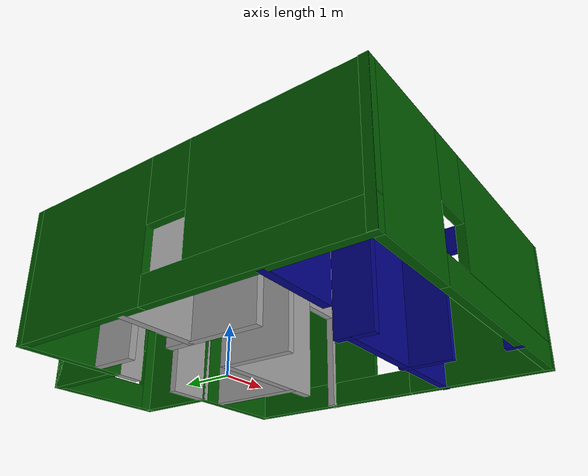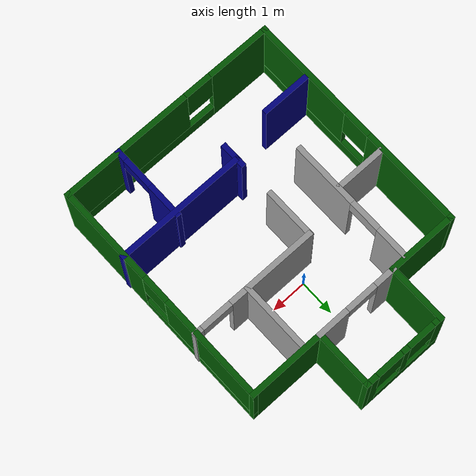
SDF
<?xml version='1.0'?>
<sdf version='1.6'>
  <model name='house'>
    <pose frame=''>-0.016749 -0.865933 0 0 -0 0</pose>
    <link name='Wall_10'>
      <collision name='Wall_10_Collision'>
        <geometry>
          <box>
            <size>2.25 0.15 2.5</size>
          </box>
        </geometry>
        <pose frame=''>0 0 1.25 0 -0 0</pose>
      </collision>
      <visual name='Wall_10_Visual'>
        <pose frame=''>0 0 1.25 0 -0 0</pose>
        <geometry>
          <box>
            <size>2.25 0.15 2.5</size>
          </box>
        </geometry>
        <material>
          <script>
            <uri>file://media/materials/scripts/gazebo.material</uri>
            <name>Gazebo/Grey</name>
          </script>
          <ambient>0 0.333333 0 1</ambient>
        </material>
        <meta>
          <layer>0</layer>
        </meta>
      </visual>
      <pose frame=''>2.11595 2.48106 0 0 -0 3.14159</pose>
    </link>
    <link name='Wall_11'>
      <collision name='Wall_11_Collision'>
        <geometry>
          <box>
            <size>1.75 0.15 2.5</size>
          </box>
        </geometry>
        <pose frame=''>0 0 1.25 0 -0 0</pose>
      </collision>
      <visual name='Wall_11_Visual'>
        <pose frame=''>0 0 1.25 0 -0 0</pose>
        <geometry>
          <box>
            <size>1.75 0.15 2.5</size>
          </box>
        </geometry>
        <material>
          <script>
            <uri>file://media/materials/scripts/gazebo.material</uri>
            <name>Gazebo/Grey</name>
          </script>
          <ambient>0 0.333333 0 1</ambient>
        </material>
        <meta>
          <layer>0</layer>
        </meta>
      </visual>
      <pose frame=''>1.06595 3.28106 0 0 -0 1.5708</pose>
    </link>
    <link name='Wall_12'>
      <pose frame=''>-0.10905 4.08106 0 0 -0 3.14159</pose>
      <visual name='Wall_12_Visual_0'>
        <pose frame=''>-1.05634 0 1.25 0 -0 0</pose>
        <geometry>
          <box>
            <size>0.387325 0.15 2.5</size>
          </box>
        </geometry>
        <material>
          <script>
            <uri>file://media/materials/scripts/gazebo.material</uri>
            <name>Gazebo/Grey</name>
          </script>
          <ambient>0 0.333333 0 1</ambient>
        </material>
        <meta>
          <layer>0</layer>
        </meta>
      </visual>
      <collision name='Wall_12_Collision_0'>
        <geometry>
          <box>
            <size>0.387325 0.15 2.5</size>
          </box>
        </geometry>
        <pose frame=''>-1.05634 0 1.25 0 -0 0</pose>
      </collision>
      <visual name='Wall_12_Visual_1'>
        <pose frame=''>0.193662 0 0.25 0 -0 0</pose>
        <geometry>
          <box>
            <size>2.11267 0.15 0.5</size>
          </box>
        </geometry>
        <material>
          <script>
            <uri>file://media/materials/scripts/gazebo.material</uri>
            <name>Gazebo/Grey</name>
          </script>
          <ambient>0 0.333333 0 1</ambient>
        </material>
        <meta>
          <layer>0</layer>
        </meta>
      </visual>
      <collision name='Wall_12_Collision_1'>
        <geometry>
          <box>
            <size>2.11267 0.15 0.5</size>
          </box>
        </geometry>
        <pose frame=''>0.193662 0 0.25 0 -0 0</pose>
      </collision>
      <visual name='Wall_12_Visual_2'>
        <pose frame=''>0.041554 0 1.5 0 -0 0</pose>
        <geometry>
          <box>
            <size>0.208458 0.15 2</size>
          </box>
        </geometry>
        <material>
          <script>
            <uri>file://media/materials/scripts/gazebo.material</uri>
            <name>Gazebo/Grey</name>
          </script>
          <ambient>0 0.333333 0 1</ambient>
        </material>
        <meta>
          <layer>0</layer>
        </meta>
      </visual>
      <collision name='Wall_12_Collision_2'>
        <geometry>
          <box>
            <size>0.208458 0.15 2</size>
          </box>
        </geometry>
        <pose frame=''>0.041554 0 1.5 0 -0 0</pose>
      </collision>
      <visual name='Wall_12_Visual_3'>
        <pose frame=''>1.09789 0 1.5 0 -0 0</pose>
        <geometry>
          <box>
            <size>0.304217 0.15 2</size>
          </box>
        </geometry>
        <material>
          <script>
            <uri>file://media/materials/scripts/gazebo.material</uri>
            <name>Gazebo/Grey</name>
          </script>
          <ambient>0 0.333333 0 1</ambient>
        </material>
        <meta>
          <layer>0</layer>
        </meta>
      </visual>
      <collision name='Wall_12_Collision_3'>
        <geometry>
          <box>
            <size>0.304217 0.15 2</size>
          </box>
        </geometry>
        <pose frame=''>1.09789 0 1.5 0 -0 0</pose>
      </collision>
      <visual name='Wall_12_Visual_4'>
        <pose frame=''>-0.462675 0 1.9 0 -0 0</pose>
        <geometry>
          <box>
            <size>0.8 0.15 1.2</size>
          </box>
        </geometry>
        <material>
          <script>
            <uri>file://media/materials/scripts/gazebo.material</uri>
            <name>Gazebo/Grey</name>
          </script>
          <ambient>0 0.333333 0 1</ambient>
        </material>
        <meta>
          <layer>0</layer>
        </meta>
      </visual>
      <collision name='Wall_12_Collision_4'>
        <geometry>
          <box>
            <size>0.8 0.15 1.2</size>
          </box>
        </geometry>
        <pose frame=''>-0.462675 0 1.9 0 -0 0</pose>
      </collision>
      <visual name='Wall_12_Visual_5'>
        <pose frame=''>0.545783 0 1.9 0 -0 0</pose>
        <geometry>
          <box>
            <size>0.8 0.15 1.2</size>
          </box>
        </geometry>
        <material>
          <script>
            <uri>file://media/materials/scripts/gazebo.material</uri>
            <name>Gazebo/Grey</name>
          </script>
          <ambient>0 0.333333 0 1</ambient>
        </material>
        <meta>
          <layer>0</layer>
        </meta>
      </visual>
      <collision name='Wall_12_Collision_5'>
        <geometry>
          <box>
            <size>0.8 0.15 1.2</size>
          </box>
        </geometry>
        <pose frame=''>0.545783 0 1.9 0 -0 0</pose>
      </collision>
    </link>
    <link name='Wall_13'>
      <collision name='Wall_13_Collision'>
        <geometry>
          <box>
            <size>1.75 0.15 2.5</size>
          </box>
        </geometry>
        <pose frame=''>0 0 1.25 0 -0 0</pose>
      </collision>
      <visual name='Wall_13_Visual'>
        <pose frame=''>0 0 1.25 0 -0 0</pose>
        <geometry>
          <box>
            <size>1.75 0.15 2.5</size>
          </box>
        </geometry>
        <material>
          <script>
            <uri>file://media/materials/scripts/gazebo.material</uri>
            <name>Gazebo/Grey</name>
          </script>
          <ambient>0 0.333333 0 1</ambient>
        </material>
        <meta>
          <layer>0</layer>
        </meta>
      </visual>
      <pose frame=''>-1.28405 3.28106 0 0 -0 -1.5708</pose>
    </link>
    <link name='Wall_14'>
      <collision name='Wall_14_Collision'>
        <geometry>
          <box>
            <size>2.05 0.15 2.5</size>
          </box>
        </geometry>
        <pose frame=''>0 0 1.25 0 -0 0</pose>
      </collision>
      <visual name='Wall_14_Visual'>
        <pose frame=''>0 0 1.25 0 -0 0</pose>
        <geometry>
          <box>
            <size>2.05 0.15 2.5</size>
          </box>
        </geometry>
        <material>
          <script>
            <uri>file://media/materials/scripts/gazebo.material</uri>
            <name>Gazebo/Grey</name>
          </script>
          <ambient>0 0.333333 0 1</ambient>
        </material>
        <meta>
          <layer>0</layer>
        </meta>
      </visual>
      <pose frame=''>-2.23405 2.48106 0 0 -0 3.14159</pose>
    </link>
    <link name='Wall_15'>
      <pose frame=''>-3.18405 -0.799958 0 0 -0 -1.5708</pose>
      <visual name='Wall_15_Visual_0'>
        <pose frame=''>-1.90849 0 1.25 0 -0 0</pose>
        <geometry>
          <box>
            <size>2.89522 0.15 2.5</size>
          </box>
        </geometry>
        <material>
          <script>
            <uri>file://media/materials/scripts/gazebo.material</uri>
            <name>Gazebo/Grey</name>
          </script>
          <ambient>0 0.333333 0 1</ambient>
        </material>
        <meta>
          <layer>0</layer>
        </meta>
      </visual>
      <collision name='Wall_15_Collision_0'>
        <geometry>
          <box>
            <size>2.89522 0.15 2.5</size>
          </box>
        </geometry>
        <pose frame=''>-1.90849 0 1.25 0 -0 0</pose>
      </collision>
      <visual name='Wall_15_Visual_1'>
        <pose frame=''>1.44761 0 0.25 0 -0 0</pose>
        <geometry>
          <box>
            <size>3.81698 0.15 0.5</size>
          </box>
        </geometry>
        <material>
          <script>
            <uri>file://media/materials/scripts/gazebo.material</uri>
            <name>Gazebo/Grey</name>
          </script>
          <ambient>0 0.333333 0 1</ambient>
        </material>
        <meta>
          <layer>0</layer>
        </meta>
      </visual>
      <collision name='Wall_15_Collision_1'>
        <geometry>
          <box>
            <size>3.81698 0.15 0.5</size>
          </box>
        </geometry>
        <pose frame=''>1.44761 0 0.25 0 -0 0</pose>
      </collision>
      <visual name='Wall_15_Visual_2'>
        <pose frame=''>1.84761 0 1.5 0 -0 0</pose>
        <geometry>
          <box>
            <size>3.01699 0.15 2</size>
          </box>
        </geometry>
        <material>
          <script>
            <uri>file://media/materials/scripts/gazebo.material</uri>
            <name>Gazebo/Grey</name>
          </script>
          <ambient>0 0.333333 0 1</ambient>
        </material>
        <meta>
          <layer>0</layer>
        </meta>
      </visual>
      <collision name='Wall_15_Collision_2'>
        <geometry>
          <box>
            <size>3.01699 0.15 2</size>
          </box>
        </geometry>
        <pose frame=''>1.84761 0 1.5 0 -0 0</pose>
      </collision>
      <visual name='Wall_15_Visual_3'>
        <pose frame=''>-0.060885 0 1.9 0 -0 0</pose>
        <geometry>
          <box>
            <size>0.8 0.15 1.2</size>
          </box>
        </geometry>
        <material>
          <script>
            <uri>file://media/materials/scripts/gazebo.material</uri>
            <name>Gazebo/Grey</name>
          </script>
          <ambient>0 0.333333 0 1</ambient>
        </material>
        <meta>
          <layer>0</layer>
        </meta>
      </visual>
      <collision name='Wall_15_Collision_3'>
        <geometry>
          <box>
            <size>0.8 0.15 1.2</size>
          </box>
        </geometry>
        <pose frame=''>-0.060885 0 1.9 0 -0 0</pose>
      </collision>
    </link>
    <link name='Wall_18'>
      <pose frame=''>-0.10905 2.48106 0 0 -0 0</pose>
      <visual name='Wall_18_Visual_0'>
        <pose frame=''>-0.923545 0 1.25 0 -0 0</pose>
        <geometry>
          <box>
            <size>0.65291 0.15 2.5</size>
          </box>
        </geometry>
        <material>
          <script>
            <uri>file://media/materials/scripts/gazebo.material</uri>
            <name>Gazebo/Grey</name>
          </script>
          <ambient>1 1 1 1</ambient>
        </material>
        <meta>
          <layer>0</layer>
        </meta>
      </visual>
      <collision name='Wall_18_Collision_0'>
        <geometry>
          <box>
            <size>0.65291 0.15 2.5</size>
          </box>
        </geometry>
        <pose frame=''>-0.923545 0 1.25 0 -0 0</pose>
      </collision>
      <visual name='Wall_18_Visual_1'>
        <pose frame=''>0.776455 0 1.25 0 -0 0</pose>
        <geometry>
          <box>
            <size>0.94709 0.15 2.5</size>
          </box>
        </geometry>
        <material>
          <script>
            <uri>file://media/materials/scripts/gazebo.material</uri>
            <name>Gazebo/Grey</name>
          </script>
          <ambient>1 1 1 1</ambient>
        </material>
        <meta>
          <layer>0</layer>
        </meta>
      </visual>
      <collision name='Wall_18_Collision_1'>
        <geometry>
          <box>
            <size>0.94709 0.15 2.5</size>
          </box>
        </geometry>
        <pose frame=''>0.776455 0 1.25 0 -0 0</pose>
      </collision>
      <visual name='Wall_18_Visual_2'>
        <pose frame=''>-0.14709 0 2.25 0 -0 0</pose>
        <geometry>
          <box>
            <size>0.9 0.15 0.5</size>
          </box>
        </geometry>
        <material>
          <script>
            <uri>file://media/materials/scripts/gazebo.material</uri>
            <name>Gazebo/Grey</name>
          </script>
          <ambient>1 1 1 1</ambient>
        </material>
        <meta>
          <layer>0</layer>
        </meta>
      </visual>
      <collision name='Wall_18_Collision_2'>
        <geometry>
          <box>
            <size>0.9 0.15 0.5</size>
          </box>
        </geometry>
        <pose frame=''>-0.14709 0 2.25 0 -0 0</pose>
      </collision>
    </link>
    <link name='Wall_20'>
      <pose frame=''>1.38768 0.513735 0 0 -0 3.14159</pose>
      <visual name='Wall_20_Visual_0'>
        <pose frame=''>-1.74188 0 1.25 0 -0 0</pose>
        <geometry>
          <box>
            <size>0.266242 0.15 2.5</size>
          </box>
        </geometry>
        <material>
          <script>
            <uri>file://media/materials/scripts/gazebo.material</uri>
            <name>Gazebo/Grey</name>
          </script>
          <ambient>1 1 1 1</ambient>
        </material>
        <meta>
          <layer>0</layer>
        </meta>
      </visual>
      <collision name='Wall_20_Collision_0'>
        <geometry>
          <box>
            <size>0.266242 0.15 2.5</size>
          </box>
        </geometry>
        <pose frame=''>-1.74188 0 1.25 0 -0 0</pose>
      </collision>
      <visual name='Wall_20_Visual_1'>
        <pose frame=''>0.583121 0 1.25 0 -0 0</pose>
        <geometry>
          <box>
            <size>2.58376 0.15 2.5</size>
          </box>
        </geometry>
        <material>
          <script>
            <uri>file://media/materials/scripts/gazebo.material</uri>
            <name>Gazebo/Grey</name>
          </script>
          <ambient>1 1 1 1</ambient>
        </material>
        <meta>
          <layer>0</layer>
        </meta>
      </visual>
      <collision name='Wall_20_Collision_1'>
        <geometry>
          <box>
            <size>2.58376 0.15 2.5</size>
          </box>
        </geometry>
        <pose frame=''>0.583121 0 1.25 0 -0 0</pose>
      </collision>
      <visual name='Wall_20_Visual_2'>
        <pose frame=''>-1.15876 0 2.25 0 -0 0</pose>
        <geometry>
          <box>
            <size>0.9 0.15 0.5</size>
          </box>
        </geometry>
        <material>
          <script>
            <uri>file://media/materials/scripts/gazebo.material</uri>
            <name>Gazebo/Grey</name>
          </script>
          <ambient>1 1 1 1</ambient>
        </material>
        <meta>
          <layer>0</layer>
        </meta>
      </visual>
      <collision name='Wall_20_Collision_2'>
        <geometry>
          <box>
            <size>0.9 0.15 0.5</size>
          </box>
        </geometry>
        <pose frame=''>-1.15876 0 2.25 0 -0 0</pose>
      </collision>
    </link>
    <link name='Wall_21'>
      <collision name='Wall_21_Collision'>
        <geometry>
          <box>
            <size>1.5 0.15 2.5</size>
          </box>
        </geometry>
        <pose frame=''>0 0 1.25 0 -0 0</pose>
      </collision>
      <visual name='Wall_21_Visual'>
        <pose frame=''>0 0 1.25 0 -0 0</pose>
        <geometry>
          <box>
            <size>1.5 0.15 2.5</size>
          </box>
        </geometry>
        <material>
          <script>
            <uri>file://media/materials/scripts/gazebo.material</uri>
            <name>Gazebo/Grey</name>
          </script>
          <ambient>1 1 1 1</ambient>
        </material>
        <meta>
          <layer>0</layer>
        </meta>
      </visual>
      <pose frame=''>-0.42405 -0.161265 0 0 -0 -1.5708</pose>
    </link>
    <link name='Wall_24'>
      <collision name='Wall_24_Collision'>
        <geometry>
          <box>
            <size>0.75 0.15 2.5</size>
          </box>
        </geometry>
        <pose frame=''>0 0 1.25 0 -0 0</pose>
      </collision>
      <visual name='Wall_24_Visual'>
        <pose frame=''>0 0 1.25 0 -0 0</pose>
        <geometry>
          <box>
            <size>0.75 0.15 2.5</size>
          </box>
        </geometry>
        <material>
          <script>
            <uri>file://media/materials/scripts/gazebo.material</uri>
            <name>Gazebo/Grey</name>
          </script>
          <ambient>0 0 0.498039 1</ambient>
        </material>
        <meta>
          <layer>0</layer>
        </meta>
      </visual>
      <pose frame=''>-0.415776 -2.15984 0 0 -0 -1.5708</pose>
    </link>
    <link name='Wall_36'>
      <collision name='Wall_36_Collision'>
        <geometry>
          <box>
            <size>1.5 0.15 2.5</size>
          </box>
        </geometry>
        <pose frame=''>0 0 1.25 0 -0 0</pose>
      </collision>
      <visual name='Wall_36_Visual'>
        <pose frame=''>0 0 1.25 0 -0 0</pose>
        <geometry>
          <box>
            <size>1.5 0.15 2.5</size>
          </box>
        </geometry>
        <material>
          <script>
            <uri>file://media/materials/scripts/gazebo.material</uri>
            <name>Gazebo/Grey</name>
          </script>
          <ambient>0 0 0.498039 1</ambient>
        </material>
        <meta>
          <layer>0</layer>
        </meta>
      </visual>
      <pose frame=''>-2.45376 -2.47368 0 0 -0 0</pose>
    </link>
    <link name='Wall_38'>
      <pose frame=''>-1.71474 0.603069 0 0 -0 -1.5708</pose>
      <visual name='Wall_38_Visual_0'>
        <pose frame=''>-1.39969 0 1.25 0 -0 0</pose>
        <geometry>
          <box>
            <size>0.950613 0.15 2.5</size>
          </box>
        </geometry>
        <material>
          <script>
            <uri>file://media/materials/scripts/gazebo.material</uri>
            <name>Gazebo/Grey</name>
          </script>
          <ambient>1 1 1 1</ambient>
        </material>
        <meta>
          <layer>0</layer>
        </meta>
      </visual>
      <collision name='Wall_38_Collision_0'>
        <geometry>
          <box>
            <size>0.950613 0.15 2.5</size>
          </box>
        </geometry>
        <pose frame=''>-1.39969 0 1.25 0 -0 0</pose>
      </collision>
      <visual name='Wall_38_Visual_1'>
        <pose frame=''>0.925306 0 1.25 0 -0 0</pose>
        <geometry>
          <box>
            <size>1.89939 0.15 2.5</size>
          </box>
        </geometry>
        <material>
          <script>
            <uri>file://media/materials/scripts/gazebo.material</uri>
            <name>Gazebo/Grey</name>
          </script>
          <ambient>1 1 1 1</ambient>
        </material>
        <meta>
          <layer>0</layer>
        </meta>
      </visual>
      <collision name='Wall_38_Collision_1'>
        <geometry>
          <box>
            <size>1.89939 0.15 2.5</size>
          </box>
        </geometry>
        <pose frame=''>0.925306 0 1.25 0 -0 0</pose>
      </collision>
      <visual name='Wall_38_Visual_2'>
        <pose frame=''>-0.474387 0 2.25 0 -0 0</pose>
        <geometry>
          <box>
            <size>0.9 0.15 0.5</size>
          </box>
        </geometry>
        <material>
          <script>
            <uri>file://media/materials/scripts/gazebo.material</uri>
            <name>Gazebo/Grey</name>
          </script>
          <ambient>1 1 1 1</ambient>
        </material>
        <meta>
          <layer>0</layer>
        </meta>
      </visual>
      <collision name='Wall_38_Collision_2'>
        <geometry>
          <box>
            <size>0.9 0.15 0.5</size>
          </box>
        </geometry>
        <pose frame=''>-0.474387 0 2.25 0 -0 0</pose>
      </collision>
    </link>
    <link name='Wall_40'>
      <collision name='Wall_40_Collision'>
        <geometry>
          <box>
            <size>1.5 0.15 2.5</size>
          </box>
        </geometry>
        <pose frame=''>0 0 1.25 0 -0 0</pose>
      </collision>
      <visual name='Wall_40_Visual'>
        <pose frame=''>0 0 1.25 0 -0 0</pose>
        <geometry>
          <box>
            <size>1.5 0.15 2.5</size>
          </box>
        </geometry>
        <material>
          <script>
            <uri>file://media/materials/scripts/gazebo.material</uri>
            <name>Gazebo/Grey</name>
          </script>
          <ambient>1 1 1 1</ambient>
        </material>
        <meta>
          <layer>0</layer>
        </meta>
      </visual>
      <pose frame=''>-2.41923 0.137532 0 0 -0 0</pose>
    </link>
    <link name='Wall_42'>
      <collision name='Wall_42_Collision'>
        <geometry>
          <box>
            <size>2 0.15 2.5</size>
          </box>
        </geometry>
        <pose frame=''>0 0 1.25 0 -0 0</pose>
      </collision>
      <visual name='Wall_42_Visual'>
        <pose frame=''>0 0 1.25 0 -0 0</pose>
        <geometry>
          <box>
            <size>2 0.15 2.5</size>
          </box>
        </geometry>
        <material>
          <script>
            <uri>file://media/materials/scripts/gazebo.material</uri>
            <name>Gazebo/Grey</name>
          </script>
          <ambient>1 1 1 1</ambient>
        </material>
        <meta>
          <layer>0</layer>
        </meta>
      </visual>
      <pose frame=''>1.55116 1.44868 0 0 -0 -1.5708</pose>
    </link>
    <link name='Wall_44'>
      <collision name='Wall_44_Collision'>
        <geometry>
          <box>
            <size>3.75 0.15 2.5</size>
          </box>
        </geometry>
        <pose frame=''>0 0 1.25 0 -0 0</pose>
      </collision>
      <visual name='Wall_44_Visual'>
        <pose frame=''>0 0 1.25 0 -0 0</pose>
        <geometry>
          <box>
            <size>3.75 0.15 2.5</size>
          </box>
        </geometry>
        <material>
          <script>
            <uri>file://media/materials/scripts/gazebo.material</uri>
            <name>Gazebo/Grey</name>
          </script>
          <ambient>0 0 0.498039 1</ambient>
        </material>
        <meta>
          <layer>0</layer>
        </meta>
      </visual>
      <pose frame=''>1.39578 -2.03829 0 0 -0 3.14159</pose>
    </link>
    <link name='Wall_46'>
      <pose frame=''>1.56947 -3.02402 0 0 -0 1.5708</pose>
      <visual name='Wall_46_Visual_0'>
        <pose frame=''>-0.968195 0 1.25 0 -0 0</pose>
        <geometry>
          <box>
            <size>0.313609 0.15 2.5</size>
          </box>
        </geometry>
        <material>
          <script>
            <uri>file://media/materials/scripts/gazebo.material</uri>
            <name>Gazebo/Grey</name>
          </script>
          <ambient>0 0 0.498039 1</ambient>
        </material>
        <meta>
          <layer>0</layer>
        </meta>
      </visual>
      <collision name='Wall_46_Collision_0'>
        <geometry>
          <box>
            <size>0.313609 0.15 2.5</size>
          </box>
        </geometry>
        <pose frame=''>-0.968195 0 1.25 0 -0 0</pose>
      </collision>
      <visual name='Wall_46_Visual_1'>
        <pose frame=''>0.606805 0 1.25 0 -0 0</pose>
        <geometry>
          <box>
            <size>1.03639 0.15 2.5</size>
          </box>
        </geometry>
        <material>
          <script>
            <uri>file://media/materials/scripts/gazebo.material</uri>
            <name>Gazebo/Grey</name>
          </script>
          <ambient>0 0 0.498039 1</ambient>
        </material>
        <meta>
          <layer>0</layer>
        </meta>
      </visual>
      <collision name='Wall_46_Collision_1'>
        <geometry>
          <box>
            <size>1.03639 0.15 2.5</size>
          </box>
        </geometry>
        <pose frame=''>0.606805 0 1.25 0 -0 0</pose>
      </collision>
      <visual name='Wall_46_Visual_2'>
        <pose frame=''>-0.361391 0 2.25 0 -0 0</pose>
        <geometry>
          <box>
            <size>0.9 0.15 0.5</size>
          </box>
        </geometry>
        <material>
          <script>
            <uri>file://media/materials/scripts/gazebo.material</uri>
            <name>Gazebo/Grey</name>
          </script>
          <ambient>0 0 0.498039 1</ambient>
        </material>
        <meta>
          <layer>0</layer>
        </meta>
      </visual>
      <collision name='Wall_46_Collision_2'>
        <geometry>
          <box>
            <size>0.9 0.15 0.5</size>
          </box>
        </geometry>
        <pose frame=''>-0.361391 0 2.25 0 -0 0</pose>
      </collision>
    </link>
    <link name='Wall_8'>
      <pose frame=''>-0.020776 -4.08097 0 0 -0 0</pose>
      <visual name='Wall_8_Visual_0'>
        <pose frame=''>-2.3025 0 1.25 0 -0 0</pose>
        <geometry>
          <box>
            <size>1.895 0.15 2.5</size>
          </box>
        </geometry>
        <material>
          <script>
            <uri>file://media/materials/scripts/gazebo.material</uri>
            <name>Gazebo/Grey</name>
          </script>
          <ambient>0 0.333333 0 1</ambient>
        </material>
        <meta>
          <layer>0</layer>
        </meta>
      </visual>
      <collision name='Wall_8_Collision_0'>
        <geometry>
          <box>
            <size>1.895 0.15 2.5</size>
          </box>
        </geometry>
        <pose frame=''>-2.3025 0 1.25 0 -0 0</pose>
      </collision>
      <visual name='Wall_8_Visual_1'>
        <pose frame=''>0.9475 0 0.25 0 -0 0</pose>
        <geometry>
          <box>
            <size>4.605 0.15 0.5</size>
          </box>
        </geometry>
        <material>
          <script>
            <uri>file://media/materials/scripts/gazebo.material</uri>
            <name>Gazebo/Grey</name>
          </script>
          <ambient>0 0.333333 0 1</ambient>
        </material>
        <meta>
          <layer>0</layer>
        </meta>
      </visual>
      <collision name='Wall_8_Collision_1'>
        <geometry>
          <box>
            <size>4.605 0.15 0.5</size>
          </box>
        </geometry>
        <pose frame=''>0.9475 0 0.25 0 -0 0</pose>
      </collision>
      <visual name='Wall_8_Visual_2'>
        <pose frame=''>1.3475 0 1.5 0 -0 0</pose>
        <geometry>
          <box>
            <size>3.805 0.15 2</size>
          </box>
        </geometry>
        <material>
          <script>
            <uri>file://media/materials/scripts/gazebo.material</uri>
            <name>Gazebo/Grey</name>
          </script>
          <ambient>0 0.333333 0 1</ambient>
        </material>
        <meta>
          <layer>0</layer>
        </meta>
      </visual>
      <collision name='Wall_8_Collision_2'>
        <geometry>
          <box>
            <size>3.805 0.15 2</size>
          </box>
        </geometry>
        <pose frame=''>1.3475 0 1.5 0 -0 0</pose>
      </collision>
      <visual name='Wall_8_Visual_3'>
        <pose frame=''>-0.955 0 1.9 0 -0 0</pose>
        <geometry>
          <box>
            <size>0.8 0.15 1.2</size>
          </box>
        </geometry>
        <material>
          <script>
            <uri>file://media/materials/scripts/gazebo.material</uri>
            <name>Gazebo/Grey</name>
          </script>
          <ambient>0 0.333333 0 1</ambient>
        </material>
        <meta>
          <layer>0</layer>
        </meta>
      </visual>
      <collision name='Wall_8_Collision_3'>
        <geometry>
          <box>
            <size>0.8 0.15 1.2</size>
          </box>
        </geometry>
        <pose frame=''>-0.955 0 1.9 0 -0 0</pose>
      </collision>
    </link>
    <link name='Wall_9'>
      <pose frame=''>3.16595 -0.799958 0 0 -0 1.5708</pose>
      <visual name='Wall_9_Visual_0'>
        <pose frame=''>-1.94232 0 1.25 0 -0 0</pose>
        <geometry>
          <box>
            <size>2.82757 0.15 2.5</size>
          </box>
        </geometry>
        <material>
          <script>
            <uri>file://media/materials/scripts/gazebo.material</uri>
            <name>Gazebo/Grey</name>
          </script>
          <ambient>0 0.333333 0 1</ambient>
        </material>
        <meta>
          <layer>0</layer>
        </meta>
      </visual>
      <collision name='Wall_9_Collision_0'>
        <geometry>
          <box>
            <size>2.82757 0.15 2.5</size>
          </box>
        </geometry>
        <pose frame=''>-1.94232 0 1.25 0 -0 0</pose>
      </collision>
      <visual name='Wall_9_Visual_1'>
        <pose frame=''>1.41378 0 0.25 0 -0 0</pose>
        <geometry>
          <box>
            <size>3.88463 0.15 0.5</size>
          </box>
        </geometry>
        <material>
          <script>
            <uri>file://media/materials/scripts/gazebo.material</uri>
            <name>Gazebo/Grey</name>
          </script>
          <ambient>0 0.333333 0 1</ambient>
        </material>
        <meta>
          <layer>0</layer>
        </meta>
      </visual>
      <collision name='Wall_9_Collision_1'>
        <geometry>
          <box>
            <size>3.88463 0.15 0.5</size>
          </box>
        </geometry>
        <pose frame=''>1.41378 0 0.25 0 -0 0</pose>
      </collision>
      <visual name='Wall_9_Visual_2'>
        <pose frame=''>1.81378 0 1.5 0 -0 0</pose>
        <geometry>
          <box>
            <size>3.08464 0.15 2</size>
          </box>
        </geometry>
        <material>
          <script>
            <uri>file://media/materials/scripts/gazebo.material</uri>
            <name>Gazebo/Grey</name>
          </script>
          <ambient>0 0.333333 0 1</ambient>
        </material>
        <meta>
          <layer>0</layer>
        </meta>
      </visual>
      <collision name='Wall_9_Collision_2'>
        <geometry>
          <box>
            <size>3.08464 0.15 2</size>
          </box>
        </geometry>
        <pose frame=''>1.81378 0 1.5 0 -0 0</pose>
      </collision>
      <visual name='Wall_9_Visual_3'>
        <pose frame=''>-0.128535 0 1.9 0 -0 0</pose>
        <geometry>
          <box>
            <size>0.8 0.15 1.2</size>
          </box>
        </geometry>
        <material>
          <script>
            <uri>file://media/materials/scripts/gazebo.material</uri>
            <name>Gazebo/Grey</name>
          </script>
          <ambient>0 0.333333 0 1</ambient>
        </material>
        <meta>
          <layer>0</layer>
        </meta>
      </visual>
      <collision name='Wall_9_Collision_3'>
        <geometry>
          <box>
            <size>0.8 0.15 1.2</size>
          </box>
        </geometry>
        <pose frame=''>-0.128535 0 1.9 0 -0 0</pose>
      </collision>
    </link>
    <static>1</static>
  </model>
</sdf>
